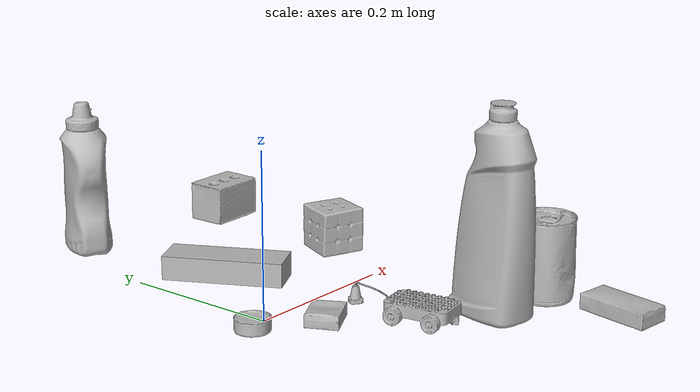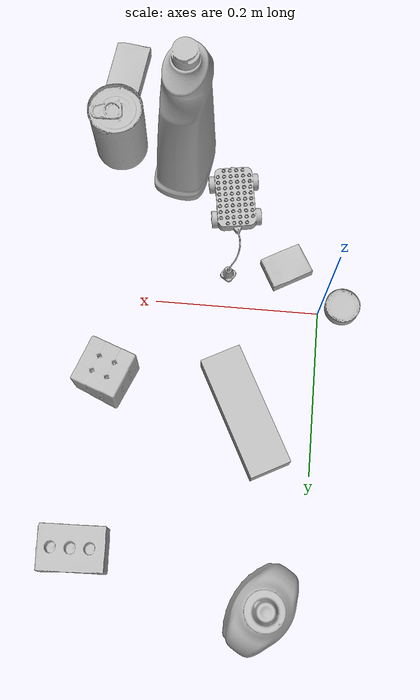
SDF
<sdf version="1.4">
  <world name="default">
    <light name="light1" type="point">
      <pose>0 0 1 0 0 0</pose>
      <diffuse>3 3 3 1</diffuse>
      <specular>3 3 3 1</specular>
    </light>
    <light name="light2" type="point">
      <pose>0 0.5 2 0 0 0</pose>
      <diffuse>1 1 1 1</diffuse>
      <specular>1 1 1 1</specular>
    </light>
    <light name="light3" type="point">
      <pose>0 0.5 2 0 0 0</pose>
      <diffuse>3 3 3 1</diffuse>
      <specular>3 3 3 1</specular>
    </light>
    <scene>
      <ambient>0.7 0.7 0.7</ambient>
    </scene>
    <model name="bottle1">
      <link name="link_bottle1">
        <collision name="default">
          <geometry>
            <mesh>
              <uri>model://bleach_cleanser/collision_meshes/collision.obj</uri>
              <scale>1.0 1.0 1.0</scale>
            </mesh>
          </geometry>
          <surface>
            <friction>
              <ode>
                <mu>0.5</mu>
                <mu2>0.5</mu2>
              </ode>
            </friction>
          <contact>
        <ode>
            <max_vel>0</max_vel>
            <min_depth>0.0001</min_depth>
            <kp>1e8</kp>
        </ode>
    </contact></surface>
        </collision>
        <visual name="default">
          <geometry>
            <mesh>
              <uri>model://bleach_cleanser/visual_meshes/visual.dae</uri>
              <scale>1.0 1.0 1.0</scale>
            </mesh>
          </geometry>
        </visual>
        <inertial>
          <mass>1.2697166204452515</mass>
          <pose>0.00012193183647468686 0.003783883061259985 -0.02442161738872528 -0.07381670616315505 0.00042011510954057825 -0.0068750724928957506</pose>
          <inertia>
            <ixx>0.0061798943</ixx>
            <iyy>0.0057587572</iyy>
            <izz>0.0010566014</izz>
            <ixy>0</ixy>
            <ixz>0</ixz>
            <iyz>0</iyz>
          </inertia>
        </inertial>
      </link>
      <pose>0.17903433740139008 -0.1883067637681961 0.1260322779417038 -0.004779219060607408 0.0065351235348012245 2.9477191802429545</pose>
    </model>
    <model name="bottle2">
      <link name="link_bottle2">
        <collision name="default">
          <geometry>
            <mesh>
              <uri>model://mustard_bottle/collision_meshes/collision.obj</uri>
              <scale>1.0 1.0 1.0</scale>
            </mesh>
          </geometry>
          <surface>
            <friction>
              <ode>
                <mu>0.5</mu>
                <mu2>0.5</mu2>
              </ode>
            </friction>
          <contact>
        <ode>
            <max_vel>0</max_vel>
            <min_depth>0.0001</min_depth>
            <kp>1e8</kp>
        </ode>
    </contact></surface>
        </collision>
        <visual name="default">
          <geometry>
            <mesh>
              <uri>model://mustard_bottle/visual_meshes/visual.dae</uri>
              <scale>1.0 1.0 1.0</scale>
            </mesh>
          </geometry>
        </visual>
        <inertial>
          <mass>0.7653017640113831</mass>
          <pose>0.000503245391882956 -0.00015647402324248105 -0.01747579500079155 0.0004182327658992807 0.0009465785893850277 0.024853714910462506</pose>
          <inertia>
            <ixx>0.0021251384</ixx>
            <iyy>0.0018646289</iyy>
            <izz>0.0005600813</izz>
            <ixy>0</ixy>
            <ixz>0</ixz>
            <iyz>0</iyz>
          </inertia>
        </inertial>
      </link>
      <pose>0.05151396989822388 0.35041162371635437 0.09583091735839844 -0.012050610928092282 -0.004889976753273786 -0.5449145211230366</pose>
    </model>
    <model name="toy1">
      <link name="link_toy1">
        <collision name="default">
          <geometry>
            <mesh>
              <uri>model://g_lego_duplo/collision_meshes/collision.obj</uri>
              <scale>0.5 0.5 0.5</scale>
            </mesh>
          </geometry>
          <surface>
            <friction>
              <ode>
                <mu>0.5</mu>
                <mu2>0.5</mu2>
              </ode>
            </friction>
          <contact>
        <ode>
            <max_vel>0</max_vel>
            <min_depth>0.0001</min_depth>
            <kp>1e8</kp>
        </ode>
    </contact></surface>
        </collision>
        <visual name="default">
          <geometry>
            <mesh>
              <uri>model://g_lego_duplo/visual_meshes/visual.dae</uri>
              <scale>0.5 0.5 0.5</scale>
            </mesh>
          </geometry>
        </visual>
        <inertial>
          <mass>0.058442164212465286</mass>
          <pose>-0.025023842230439186 0.0008777315961197019 0.0019403378246352077 0.010962970283690966 0.0381082459421261 -0.09653034831594848</pose>
          <inertia>
            <ixx>2.1170836e-05</ixx>
            <iyy>6.4006235e-05</iyy>
            <izz>8.007422e-05</izz>
            <ixy>0</ixy>
            <ixz>0</ixz>
            <iyz>0</iyz>
          </inertia>
        </inertial>
      </link>
      <pose>0.11052460223436356 -0.10880948603153229 0.014911485835909843 0.0002262142369743978 -0.0022779363103832906 1.7208435670448077</pose>
    </model>
    <model name="toy2">
      <link name="link_toy2">
        <collision name="default">
          <geometry>
            <mesh>
              <uri>model://foam_brick/collision_meshes/collision.obj</uri>
              <scale>1.0 1.0 1.0</scale>
            </mesh>
          </geometry>
          <surface>
            <friction>
              <ode>
                <mu>0.5</mu>
                <mu2>0.5</mu2>
              </ode>
            </friction>
          <contact>
        <ode>
            <max_vel>0</max_vel>
            <min_depth>0.0001</min_depth>
            <kp>1e8</kp>
        </ode>
    </contact></surface>
        </collision>
        <visual name="default">
          <geometry>
            <mesh>
              <uri>model://foam_brick/visual_meshes/visual.dae</uri>
              <scale>1.0 1.0 1.0</scale>
            </mesh>
          </geometry>
        </visual>
        <inertial>
          <mass>0.20487983524799347</mass>
          <pose>-0.0002522472059354186 0.0003458437859080732 -0.0002532101352699101 -0.2940200921298176 0.01727444945267686 -0.0007449878655710941</pose>
          <inertia>
            <ixx>8.9495355e-05</ixx>
            <iyy>0.0001428839</iyy>
            <izz>0.00014469978</izz>
            <ixy>0</ixy>
            <ixz>0</ixz>
            <iyz>0</iyz>
          </inertia>
        </inertial>
      </link>
      <pose>0.26146426796913147 0.3054097592830658 0.02592279389500618 0.013417031757803281 0.0041524560603142455 0.035737254594810586</pose>
    </model>
    <model name="can1">
      <link name="link_can1">
        <collision name="default">
          <geometry>
            <mesh>
              <uri>model://tuna_fish_can/collision_meshes/collision.obj</uri>
              <scale>0.5 0.5 0.5</scale>
            </mesh>
          </geometry>
          <surface>
            <friction>
              <ode>
                <mu>0.5</mu>
                <mu2>0.5</mu2>
              </ode>
            </friction>
          <contact>
        <ode>
            <max_vel>0</max_vel>
            <min_depth>0.0001</min_depth>
            <kp>1e8</kp>
        </ode>
    </contact></surface>
        </collision>
        <visual name="default">
          <geometry>
            <mesh>
              <uri>model://tuna_fish_can/visual_meshes/visual.dae</uri>
              <scale>0.5 0.5 0.5</scale>
            </mesh>
          </geometry>
        </visual>
        <inertial>
          <mass>0.012491201050579548</mass>
          <pose>-2.036202567978762e-05 -7.256427124957554e-06 -0.0005269025568850338 -0.0017944782936896576 0.0001716245920406042 0.24054207470378652</pose>
          <inertia>
            <ixx>1.6888293e-06</ixx>
            <iyy>1.6817903e-06</iyy>
            <izz>2.889828e-06</izz>
            <ixy>0</ixy>
            <ixz>0</ixz>
            <iyz>0</iyz>
          </inertia>
        </inertial>
      </link>
      <pose>-0.02874603122472763 -0.00903752539306879 0.008519998751580715 4.875167622098493e-09 -2.131478062414798e-09 -0.2557370639632821</pose>
    </model>
    <model name="can2">
      <link name="link_can2">
        <collision name="default">
          <geometry>
            <mesh>
              <uri>model://tomato_soup_can/collision_meshes/collision.obj</uri>
              <scale>1.0 1.0 1.0</scale>
            </mesh>
          </geometry>
          <surface>
            <friction>
              <ode>
                <mu>0.5</mu>
                <mu2>0.5</mu2>
              </ode>
            </friction>
          <contact>
        <ode>
            <max_vel>0</max_vel>
            <min_depth>0.0001</min_depth>
            <kp>1e8</kp>
        </ode>
    </contact></surface>
        </collision>
        <visual name="default">
          <geometry>
            <mesh>
              <uri>model://tomato_soup_can/visual_meshes/visual.dae</uri>
              <scale>1.0 1.0 1.0</scale>
            </mesh>
          </geometry>
        </visual>
        <inertial>
          <mass>0.1827235370874405</mass>
          <pose>0.00012652271834667772 0.00010805515921674669 -0.0017973986687138677 0.007020070640758328 0.00042299385100205743 -0.009903366123441316</pose>
          <inertia>
            <ixx>0.00020034082</ixx>
            <iyy>0.00019918295</iyy>
            <izz>0.00010383482</izz>
            <ixy>0</ixy>
            <ixz>0</ixz>
            <iyz>0</iyz>
          </inertia>
        </inertial>
      </link>
      <pose>0.2655261158943176 -0.20643071830272675 0.05127400532364845 -5.094846406415975e-07 -5.293068148170072e-07 1.442919009546534</pose>
    </model>
    <model name="box1">
      <link name="link_box1">
        <collision name="default">
          <geometry>
            <mesh>
              <uri>model://jenga/collision_meshes/collision.obj</uri>
              <scale>1.0 1.0 1.0</scale>
            </mesh>
          </geometry>
          <surface>
            <friction>
              <ode>
                <mu>0.5</mu>
                <mu2>0.5</mu2>
              </ode>
            </friction>
          <contact>
        <ode>
            <max_vel>0</max_vel>
            <min_depth>0.0001</min_depth>
            <kp>1e8</kp>
        </ode>
    </contact></surface>
        </collision>
        <visual name="default">
          <geometry>
            <mesh>
              <uri>model://jenga/visual_meshes/visual.dae</uri>
              <scale>1.0 1.0 1.0</scale>
            </mesh>
          </geometry>
        </visual>
        <inertial>
          <mass>0.23032541573047638</mass>
          <pose>-2.502855807051674e-07 -0.00010250010382151231 -4.0923401684267446e-05 0.0 -7.342154049184251e-07 0.0</pose>
          <inertia>
            <ixx>6.3736625e-05</ixx>
            <iyy>0.00043187768</iyy>
            <izz>0.00046106614</izz>
            <ixy>0</ixy>
            <ixz>0</ixz>
            <iyz>0</iyz>
          </inertia>
        </inertial>
      </link>
      <pose>0.08130818605422974 0.1328861117362976 0.014999992214143276 1.5494948421032858e-08 -6.083614755392465e-10 -1.0896789948381427</pose>
    </model>
    <model name="box2">
      <link name="link_box2">
        <collision name="default">
          <geometry>
            <mesh>
              <uri>model://cracker_box/collision_meshes/collision.obj</uri>
              <scale>0.25 0.25 0.25</scale>
            </mesh>
          </geometry>
          <surface>
            <friction>
              <ode>
                <mu>0.5</mu>
                <mu2>0.5</mu2>
              </ode>
            </friction>
          <contact>
        <ode>
            <max_vel>0</max_vel>
            <min_depth>0.0001</min_depth>
            <kp>1e8</kp>
        </ode>
    </contact></surface>
        </collision>
        <visual name="default">
          <geometry>
            <mesh>
              <uri>model://cracker_box/visual_meshes/visual.dae</uri>
              <scale>0.25 0.25 0.25</scale>
            </mesh>
          </geometry>
        </visual>
        <inertial>
          <mass>0.037928901612758636</mass>
          <pose>0.0002366034168517217 6.358561222441494e-05 -0.000425738311605528 -0.00031620771242973385 -0.011106489600347247 0.002546794536796529</pose>
          <inertia>
            <ixx>6.029637e-06</ixx>
            <iyy>9.956116e-06</iyy>
            <izz>1.420829e-05</izz>
            <ixy>0</ixy>
            <ixz>0</ixz>
            <iyz>0</iyz>
          </inertia>
        </inertial>
      </link>
      <pose>0.04253339022397995 -0.05539262667298317 0.009120449423789978 -0.011788088444813938 -0.007367149782108764 -2.64587778835385</pose>
    </model>
    <model name="box3">
      <link name="link_box3">
        <collision name="default">
          <geometry>
            <mesh>
              <uri>model://sugar_box/collision_meshes/collision.obj</uri>
              <scale>0.5 0.5 0.5</scale>
            </mesh>
          </geometry>
          <surface>
            <friction>
              <ode>
                <mu>0.5</mu>
                <mu2>0.5</mu2>
              </ode>
            </friction>
          <contact>
        <ode>
            <max_vel>0</max_vel>
            <min_depth>0.0001</min_depth>
            <kp>1e8</kp>
        </ode>
    </contact></surface>
        </collision>
        <visual name="default">
          <geometry>
            <mesh>
              <uri>model://sugar_box/visual_meshes/visual.dae</uri>
              <scale>0.5 0.5 0.5</scale>
            </mesh>
          </geometry>
        </visual>
        <inertial>
          <mass>0.11577744781970978</mass>
          <pose>0.0005171863595023751 1.9245549992774613e-05 -0.00018182402709499002 -0.0004046260967602003 0.0010506636382171825 0.002615378323343388</pose>
          <inertia>
            <ixx>2.4116362e-05</ixx>
            <iyy>7.7949044e-05</iyy>
            <izz>9.3314295e-05</izz>
            <ixy>0</ixy>
            <ixz>0</ixz>
            <iyz>0</iyz>
          </inertia>
        </inertial>
      </link>
      <pose>0.26913195848464966 -0.3065219819545746 0.011399311013519764 0.0007750993768873929 -0.023432624846798124 1.4445531472608582</pose>
    </model>
    <model name="box4">
      <link name="link_box4">
        <collision name="default">
          <geometry>
            <mesh>
              <uri>model://rubiks_cube/collision_meshes/collision.obj</uri>
              <scale>1.0 1.0 1.0</scale>
            </mesh>
          </geometry>
          <surface>
            <friction>
              <ode>
                <mu>0.5</mu>
                <mu2>0.5</mu2>
              </ode>
            </friction>
          <contact>
        <ode>
            <max_vel>0</max_vel>
            <min_depth>0.0001</min_depth>
            <kp>1e8</kp>
        </ode>
    </contact></surface>
        </collision>
        <visual name="default">
          <geometry>
            <mesh>
              <uri>model://rubiks_cube/visual_meshes/visual.dae</uri>
              <scale>1.0 1.0 1.0</scale>
            </mesh>
          </geometry>
        </visual>
        <inertial>
          <mass>0.277982622385025</mass>
          <pose>2.6721041649580002e-05 5.2569666877388954e-05 -7.264316082000732e-06 -0.05467259342135701 -0.09814005995908277 -0.03445491653702878</pose>
          <inertia>
            <ixx>0.00015360407</ixx>
            <iyy>0.00015288773</iyy>
            <izz>0.00015487692</izz>
            <ixy>0</ixy>
            <ixz>0</ixz>
            <iyz>0</iyz>
          </inertia>
        </inertial>
      </link>
      <pose>0.2484351247549057 0.1012745052576065 0.028678948059678078 -5.415407330725753e-06 -1.6679254169624618e-06 -0.3672317036748317</pose>
    </model>
  <physics type="ode">
      <max_contacts>50</max_contacts>
      <ode>
        <solver>
          <type>quick</type>
          <iters>75</iters>
        </solver>
        <constraints>
          <contact_max_correcting_vel>0</contact_max_correcting_vel>
          <contact_surface_layer>0</contact_surface_layer>
        </constraints>
      </ode>
    </physics></world>
</sdf>
